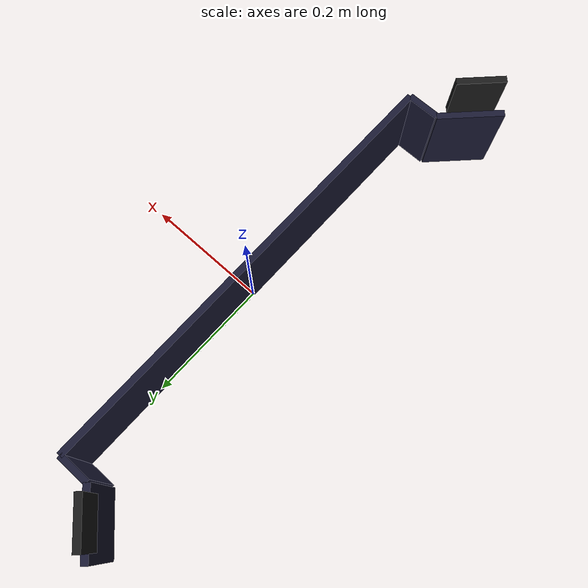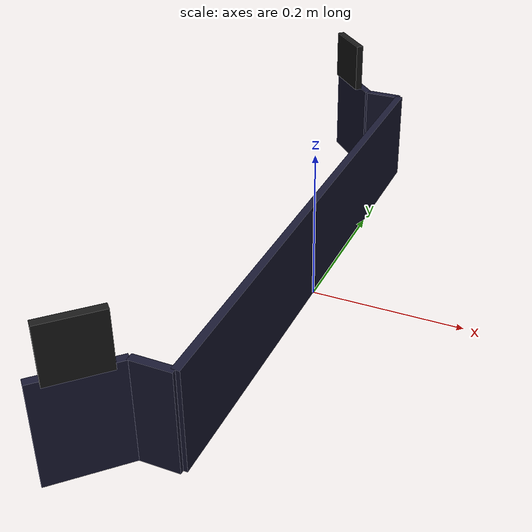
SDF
<?xml version="1.0" ?>
<sdf version="1.5">
  <model name="vikings_bot_charger">
    <static>true</static>

      <link name="base_link">
        <pose>0 0 0 0 0 0</pose>
      </link>

      <link name="back_link">
        <pose relative_to="back_link_joint">0 0 0 0 0 0</pose>
        <collision name="back_link_collision">
          <geometry>
              <box>
                  <size>0.01 0.7 0.13</size>
              </box>
          </geometry>
        </collision>

        <visual name="back_link_visual">
          <geometry>
              <box>
                  <size>0.01 0.7 0.13</size>
              </box>
          </geometry>
          <material>
            <ambient>0.0 0.0 1.0 1</ambient>
            <diffuse>0.1 0.1 0.2 1</diffuse>
            <specular>0 0 0 0</specular>
            <emissive>0 0 0 1</emissive>
          </material>
        </visual>
      </link>

      <joint name="back_link_joint" type="fixed">
        <parent>base_link</parent>
        <child>back_link</child>
        <pose relative_to="base_link">0 0 0.075 0 0 0</pose>
      </joint>

      <link name="left_side">
        <pose relative_to="left_side_joint">0 0 0 0 0 0</pose>
        <collision name="left_side_collision">
          <geometry>
              <box>
                  <size>0.05 0.01 0.13</size>
              </box>
          </geometry>
        </collision>

        <visual name="left_side_visual">
          <geometry>
              <box>
                  <size>0.05 0.01 0.13</size>
              </box>
          </geometry>
          <material>
            <ambient>0.0 0.0 1.0 1</ambient>
            <diffuse>0.1 0.1 0.2 1</diffuse>
            <specular>0 0 0 0</specular>
            <emissive>0 0 0 1</emissive>
          </material>
        </visual>
      </link>

      <joint name="left_side_joint" type="fixed">
        <pose relative_to="back_link">-0.025 0.35 0 0 0 0</pose>
        <parent>back_link</parent>
        <child>left_side</child>
      </joint>

      <link name="right_side">
        <pose relative_to="right_side_joint">0 0 0 0 0 0</pose>
        <collision name="right_side_collision">
          <geometry>
              <box>
                  <size>0.05 0.01 0.13</size>
              </box>
          </geometry>
        </collision>

        <visual name="right_side_visual">
          <geometry>
              <box>
                  <size>0.05 0.01 0.13</size>
              </box>
          </geometry>
          <material>
            <ambient>0.0 0.0 1.0 1</ambient>
            <diffuse>0.1 0.1 0.2 1</diffuse>
            <specular>0 0 0 0</specular>
            <emissive>0 0 0 1</emissive>
          </material>
        </visual>
      </link>

      <joint name="right_side_joint" type="fixed">
        <pose relative_to="back_link">-0.025 -0.35 0 0 0 0</pose>
        <parent>back_link</parent>
        <child>left_side</child>
      </joint>

      <link name="left_side_angle">
        <pose relative_to="left_side_angle_joint">0 0 0 0 0 0</pose>
        <collision name="left_side_collision">
          <geometry>
              <box>
                  <size>0.05 0.01 0.13</size>
              </box>
          </geometry>
        </collision>

        <visual name="left_side_visual">
          <geometry>
              <box>
                  <size>0.10 0.01 0.13</size>
              </box>
          </geometry>
          <material>
            <ambient>0.0 0.0 1.0 1</ambient>
            <diffuse>0.1 0.1 0.2 1</diffuse>
            <specular>0 0 0 0</specular>
            <emissive>0 0 0 1</emissive>
          </material>
        </visual>
      </link>

      <joint name="left_side_angle_joint" type="fixed">
        <pose relative_to="left_side">-0.06 0.035 0 0 0 -0.785</pose>
        <parent>back_link</parent>
        <child>left_side_angle</child>
      </joint>

      <link name="right_side_angle">
        <pose relative_to="right_side_angle_joint">0 0 0 0 0 0</pose>
        <collision name="right_side_collision">
          <geometry>
              <box>
                  <size>0.05 0.01 0.13</size>
              </box>
          </geometry>
        </collision>

        <visual name="right_side_visual">
          <geometry>
              <box>
                  <size>0.10 0.01 0.13</size>
              </box>
          </geometry>
          <material>
            <ambient>0.0 0.0 1.0 1</ambient>
            <diffuse>0.1 0.1 0.2 1</diffuse>
            <specular>0 0 0 0</specular>
            <emissive>0 0 0 1</emissive>
          </material>
        </visual>
      </link>

      <joint name="right_side_angle_joint" type="fixed">
        <pose relative_to="right_side">-0.06 -0.035 0 0 0 0.785</pose>
        <parent>back_link</parent>
        <child>left_side_angle</child>
      </joint>

      <link name="left_side_reflector">
        <pose relative_to="left_side_reflector_joint">0 0 0.1 0 0 0</pose>
        <collision name="left_side_collision">
          <geometry>
              <box>
                  <size>0.07 0.01 0.07</size>
              </box>
          </geometry>
          <laser_retro>550</laser_retro>
        </collision>

        <visual name="left_side_visual">
          <geometry>
              <box>
                  <size>0.07 0.01 0.07</size>
              </box>
          </geometry>
          <material>
            <ambient>0.9 0.9 0.9 1</ambient>
            <diffuse>0.1 0.1 0.1 1</diffuse>
            <specular>0.7 0.7 0.7 0</specular>
            <emissive>0.9 0.9 0.9 1</emissive>
          </material>
        </visual>
      </link>

      <joint name="left_side_reflector_joint" type="fixed">
        <pose relative_to="left_side_angle_joint">0 -0.01 0 0 0 0</pose>
        <parent>left_side_angle_joint</parent>
        <child>left_side_reflector</child>
      </joint>

      <link name="right_side_reflector">
        <pose relative_to="right_side_reflector_joint">0 0 0.1 0 0 0</pose>
        <collision name="right_side_collision">
          <geometry>
              <box>
                  <size>0.07 0.01 0.07</size>
              </box>
          </geometry>
          <laser_retro>550</laser_retro>
        </collision>

        <visual name="right_side_visual">
          <geometry>
              <box>
                  <size>0.07 0.01 0.07</size>
              </box>
          </geometry>
          <material>
            <ambient>0.9 0.9 0.9 1</ambient>
            <diffuse>0.1 0.1 0.1 1</diffuse>
            <specular>0.7 0.7 0.7 0</specular>
            <emissive>0.9 0.9 0.9 1</emissive>
          </material>
        </visual>
      </link>

      <joint name="right_side_reflector_joint" type="fixed">
        <pose relative_to="right_side_angle_joint">0 -0.01 0 0 0 0</pose>
        <parent>left_side_angle_joint</parent>
        <child>right_side_reflector</child>
      </joint>

  </model>
</sdf>
